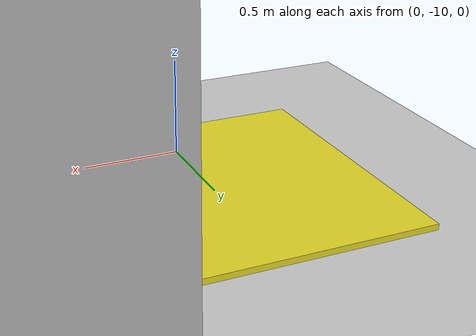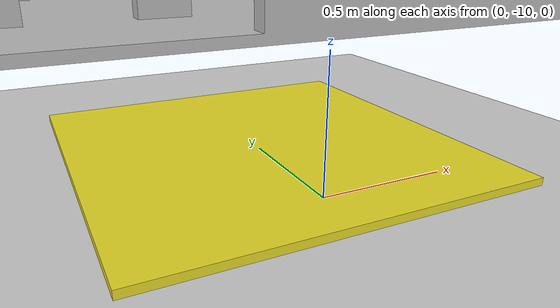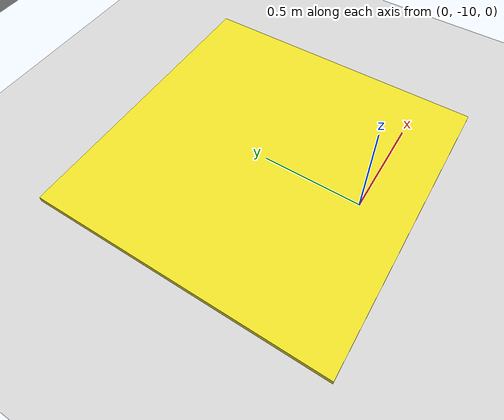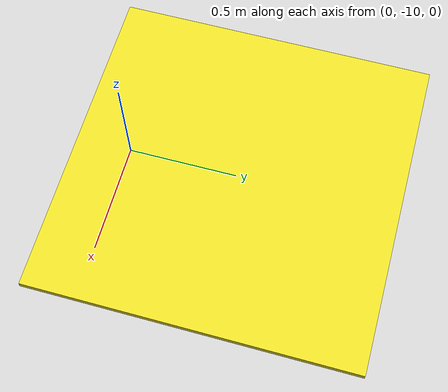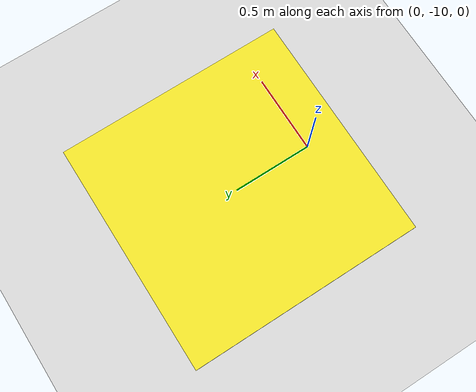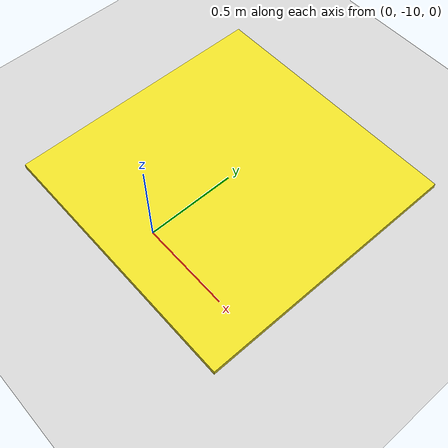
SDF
<?xml version="1.0" ?>
<sdf version="1.6">
  <world name="nidar_competition">

    <include>
      <uri>model://sun</uri>
    </include>

    <include>
      <uri>model://ground_plane</uri>
    </include>

    <include>
      <name>arina_nidar</name>
      <uri>model://arina_nidar</uri>
      <pose>0.0 0.0 0.0 0.0 0.0 0.0</pose>
    </include>

    <!-- The pad model self-centres (its own origin is the pad centre), so this pose is
         simply launch_pad.center from mission_config.yaml. -->
    <include>
      <name>launch_pad</name>
      <uri>model://launch_pad</uri>
      <pose>0.0 -9.5 0 0 0 0</pose>
    </include>

    <physics name="default_physics" default="true" type="ode">
      <max_step_size>0.004</max_step_size>
      <real_time_factor>1.0</real_time_factor>
      <real_time_update_rate>250</real_time_update_rate>
    </physics>

  </world>
</sdf>

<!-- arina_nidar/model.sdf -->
<sdf version="1.5">
  <model name="arina_nidar">
    <static>true</static>
    <link name="link">
      <pose>-7.5 -7.5 0 0 0 0</pose>
      <collision name="collision">
        <geometry>
          <mesh>
            <uri>model://arina_nidar/meshes/arina_nidar.stl</uri>
            <scale>0.001 0.001 0.001</scale>
          </mesh>
        </geometry>
        <surface>
          <friction>
            <ode>
              <mu>1.0</mu>
              <mu2>1.0</mu2>
            </ode>
          </friction>
        </surface>
      </collision>
      <visual name="visual">
        <cast_shadows>false</cast_shadows>
        <geometry>
          <mesh>
            <uri>model://arina_nidar/meshes/arina_nidar.stl</uri>
            <scale>0.001 0.001 0.001</scale>
          </mesh>
        </geometry>
      </visual>
    </link>
  </model>
</sdf>

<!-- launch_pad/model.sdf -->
<sdf version="1.5">
  <model name="launch_pad">
    <static>true</static>
    <link name="link">
      <pose>-0.75 0.75 0 1.5707963 0 0</pose>
      <collision name="collision">
        <geometry>
          <mesh>
            <uri>model://launch_pad/meshes/launch_pad.stl</uri>
            <scale>0.00246 0.0002 0.00246</scale>
          </mesh>
        </geometry>
        <surface>
          <!-- Explicit ODE default, same reasoning as the arena: a high mu here would pin the
               vehicle on touchdown instead of letting it settle. -->
          <friction>
            <ode>
              <mu>1.0</mu>
              <mu2>1.0</mu2>
            </ode>
          </friction>
        </surface>
      </collision>
      <visual name="visual">
        <cast_shadows>false</cast_shadows>
        <geometry>
          <mesh>
            <uri>model://launch_pad/meshes/launch_pad.stl</uri>
            <scale>0.00246 0.0002 0.00246</scale>
          </mesh>
        </geometry>
        <material>
          <script>
            <name>Gazebo/Yellow</name>
            <uri>file://media/materials/scripts/gazebo.material</uri>
          </script>
        </material>
      </visual>
    </link>
  </model>
</sdf>
